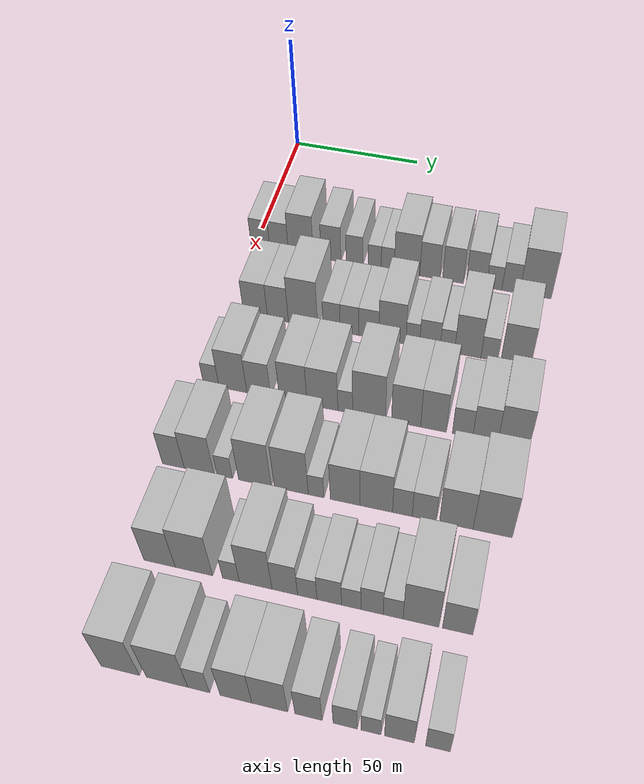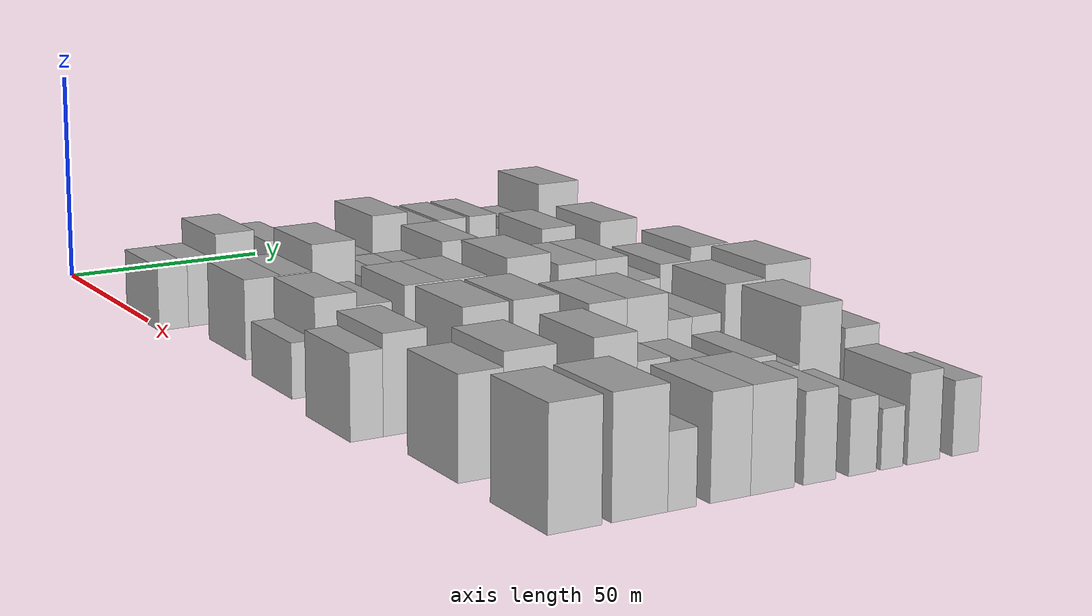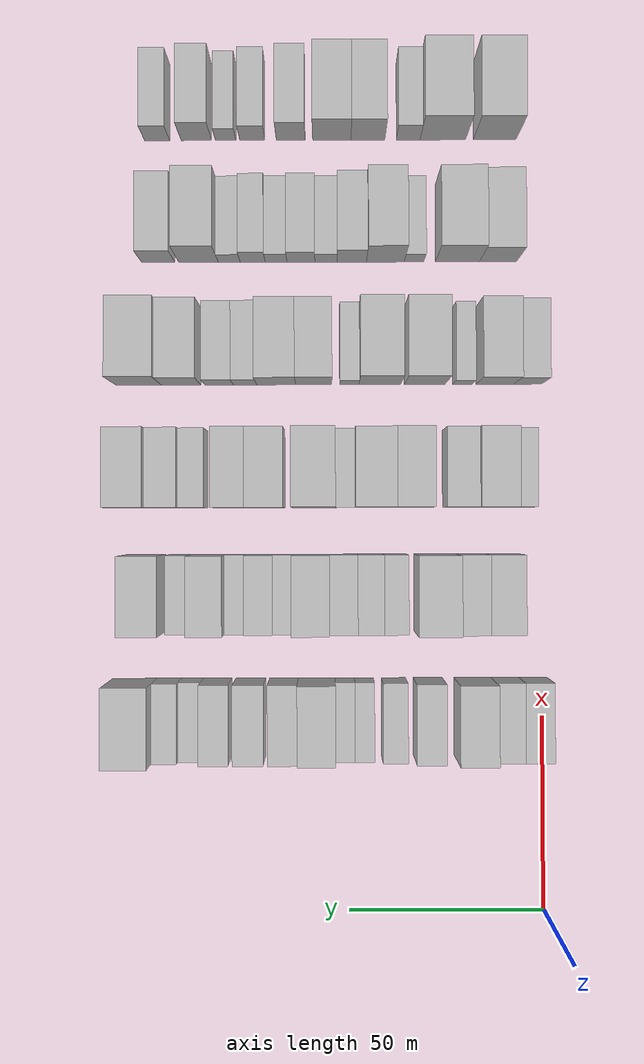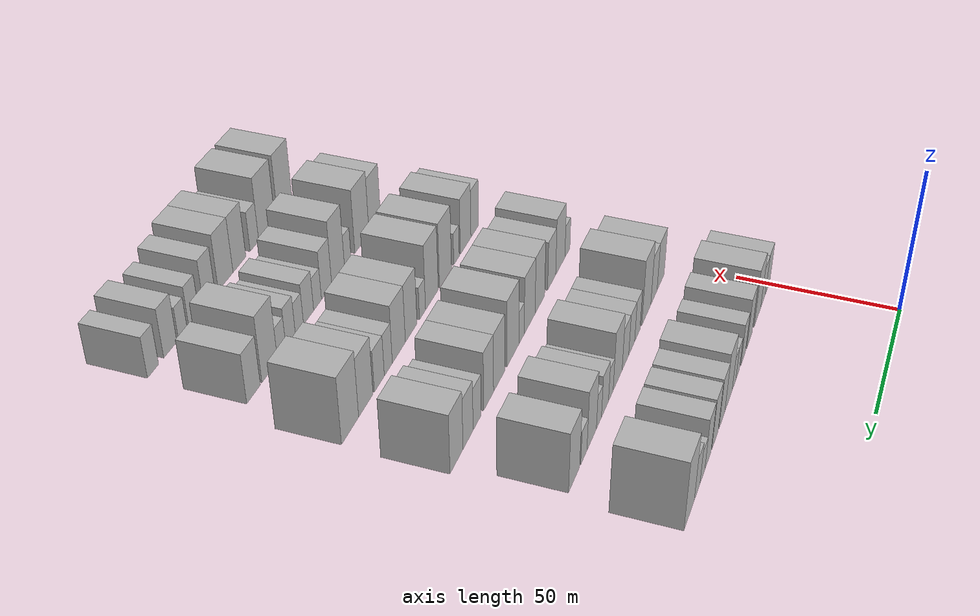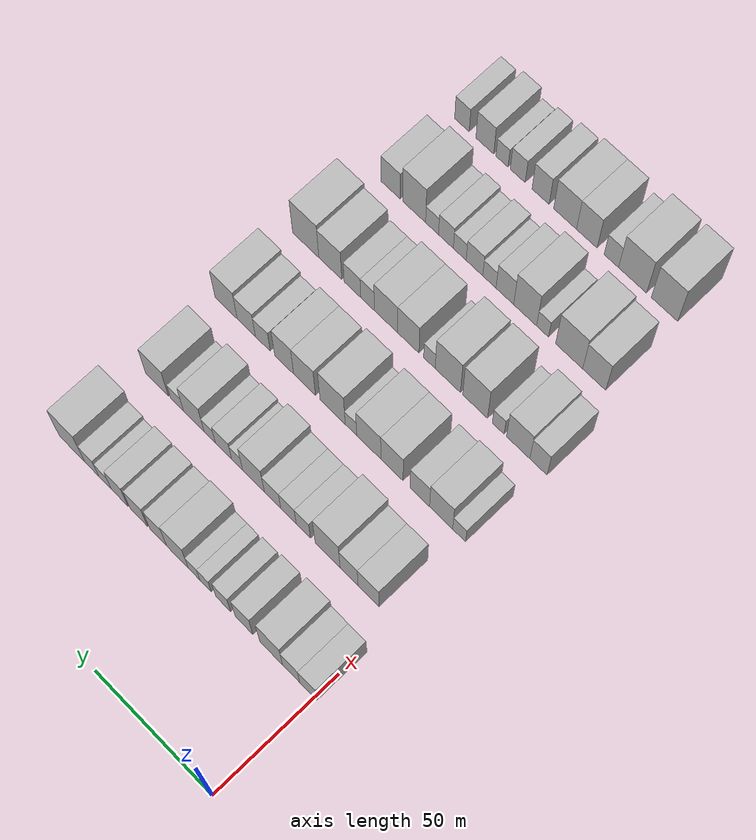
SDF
<sdf version="1.6">
 <world name="default">
  <model name="building_56">
   <static>1</static>
   <pose>50.0000 2.5139 0 0.000000 0.000000 0.000000</pose>
   <link name="link">
    <pose>0 0 7.50 0 0 0</pose>
    <collision name="collision"><geometry><box><size>20.0000 7.2975 15.0000</size></box></geometry></collision>
    <visual name="visual">
     <cast_shadows>0</cast_shadows>
     <geometry><box><size>20.0000 7.2975 15.0000</size></box></geometry>
     <material>
      <script>
       <uri>model://HANNAS_wall/materials/scripts</uri>
       <uri>model://HANNAS_wall/materials/textures</uri>
       <name>vrc/HANNAS_wall</name>
      </script>
     </material>
    </visual>
   </link>
  </model>
  <model name="building_57">
   <static>1</static>
   <pose>50.0000 9.7310 0 0.000000 0.000000 0.000000</pose>
   <link name="link">
    <pose>0 0 7.50 0 0 0</pose>
    <collision name="collision"><geometry><box><size>20.0000 7.1368 15.0000</size></box></geometry></collision>
    <visual name="visual">
     <cast_shadows>0</cast_shadows>
     <geometry><box><size>20.0000 7.1368 15.0000</size></box></geometry>
     <material>
      <script>
       <uri>model://HANNAS_wall/materials/scripts</uri>
       <uri>model://HANNAS_wall/materials/textures</uri>
       <name>vrc/HANNAS_wall</name>
      </script>
     </material>
    </visual>
   </link>
  </model>
  <model name="building_58">
   <static>1</static>
   <pose>50.0000 18.1209 0 0.000000 0.000000 0.000000</pose>
   <link name="link">
    <pose>0 0 10.50 0 0 0</pose>
    <collision name="collision"><geometry><box><size>20.0000 9.6430 21.0000</size></box></geometry></collision>
    <visual name="visual">
     <cast_shadows>0</cast_shadows>
     <geometry><box><size>20.0000 9.6430 21.0000</size></box></geometry>
     <material>
      <script>
       <uri>model://HANNAS_wall/materials/scripts</uri>
       <uri>model://HANNAS_wall/materials/textures</uri>
       <name>vrc/HANNAS_wall</name>
      </script>
     </material>
    </visual>
   </link>
  </model>
  <model name="building_59">
   <static>1</static>
   <pose>50.0000 29.6973 0 0.000000 0.000000 0.000000</pose>
   <link name="link">
    <pose>0 0 9.00 0 0 0</pose>
    <collision name="collision"><geometry><box><size>20.0000 7.5098 18.0000</size></box></geometry></collision>
    <visual name="visual">
     <cast_shadows>0</cast_shadows>
     <geometry><box><size>20.0000 7.5098 18.0000</size></box></geometry>
     <material>
      <script>
       <uri>model://HANNAS_wall/materials/scripts</uri>
       <uri>model://HANNAS_wall/materials/textures</uri>
       <name>vrc/HANNAS_wall</name>
      </script>
     </material>
    </visual>
   </link>
  </model>
  <model name="building_60">
   <static>1</static>
   <pose>50.0000 38.6070 0 0.000000 0.000000 0.000000</pose>
   <link name="link">
    <pose>0 0 7.50 0 0 0</pose>
    <collision name="collision"><geometry><box><size>20.0000 6.3096 15.0000</size></box></geometry></collision>
    <visual name="visual">
     <cast_shadows>0</cast_shadows>
     <geometry><box><size>20.0000 6.3096 15.0000</size></box></geometry>
     <material>
      <script>
       <uri>model://HANNAS_wall/materials/scripts</uri>
       <uri>model://HANNAS_wall/materials/textures</uri>
       <name>vrc/HANNAS_wall</name>
      </script>
     </material>
    </visual>
   </link>
  </model>
  <model name="building_61">
   <static>1</static>
   <pose>50.0000 46.2235 0 0.000000 0.000000 0.000000</pose>
   <link name="link">
    <pose>0 0 6.00 0 0 0</pose>
    <collision name="collision"><geometry><box><size>20.0000 4.9234 12.0000</size></box></geometry></collision>
    <visual name="visual">
     <cast_shadows>0</cast_shadows>
     <geometry><box><size>20.0000 4.9234 12.0000</size></box></geometry>
     <material>
      <script>
       <uri>model://HANNAS_wall/materials/scripts</uri>
       <uri>model://HANNAS_wall/materials/textures</uri>
       <name>vrc/HANNAS_wall</name>
      </script>
     </material>
    </visual>
   </link>
  </model>
  <model name="building_62">
   <static>1</static>
   <pose>50.0000 51.1599 0 0.000000 0.000000 0.000000</pose>
   <link name="link">
    <pose>0 0 6.00 0 0 0</pose>
    <collision name="collision"><geometry><box><size>20.0000 4.9494 12.0000</size></box></geometry></collision>
    <visual name="visual">
     <cast_shadows>0</cast_shadows>
     <geometry><box><size>20.0000 4.9494 12.0000</size></box></geometry>
     <material>
      <script>
       <uri>model://HANNAS_wall/materials/scripts</uri>
       <uri>model://HANNAS_wall/materials/textures</uri>
       <name>vrc/HANNAS_wall</name>
      </script>
     </material>
    </visual>
   </link>
  </model>
  <model name="building_63">
   <static>1</static>
   <pose>50.0000 58.3847 0 0.000000 0.000000 0.000000</pose>
   <link name="link">
    <pose>0 0 10.50 0 0 0</pose>
    <collision name="collision"><geometry><box><size>20.0000 9.5000 21.0000</size></box></geometry></collision>
    <visual name="visual">
     <cast_shadows>0</cast_shadows>
     <geometry><box><size>20.0000 9.5000 21.0000</size></box></geometry>
     <material>
      <script>
       <uri>model://HANNAS_wall/materials/scripts</uri>
       <uri>model://HANNAS_wall/materials/textures</uri>
       <name>vrc/HANNAS_wall</name>
      </script>
     </material>
    </visual>
   </link>
  </model>
  <model name="building_64">
   <static>1</static>
   <pose>50.0000 66.8344 0 0.000000 0.000000 0.000000</pose>
   <link name="link">
    <pose>0 0 9.00 0 0 0</pose>
    <collision name="collision"><geometry><box><size>20.0000 7.3995 18.0000</size></box></geometry></collision>
    <visual name="visual">
     <cast_shadows>0</cast_shadows>
     <geometry><box><size>20.0000 7.3995 18.0000</size></box></geometry>
     <material>
      <script>
       <uri>model://HANNAS_wall/materials/scripts</uri>
       <uri>model://HANNAS_wall/materials/textures</uri>
       <name>vrc/HANNAS_wall</name>
      </script>
     </material>
    </visual>
   </link>
  </model>
  <model name="building_65">
   <static>1</static>
   <pose>50.0000 75.3883 0 0.000000 0.000000 0.000000</pose>
   <link name="link">
    <pose>0 0 9.00 0 0 0</pose>
    <collision name="collision"><geometry><box><size>20.0000 7.7082 18.0000</size></box></geometry></collision>
    <visual name="visual">
     <cast_shadows>0</cast_shadows>
     <geometry><box><size>20.0000 7.7082 18.0000</size></box></geometry>
     <material>
      <script>
       <uri>model://HANNAS_wall/materials/scripts</uri>
       <uri>model://HANNAS_wall/materials/textures</uri>
       <name>vrc/HANNAS_wall</name>
      </script>
     </material>
    </visual>
   </link>
  </model>
  <model name="building_66">
   <static>1</static>
   <pose>50.0000 83.9246 0 0.000000 0.000000 0.000000</pose>
   <link name="link">
    <pose>0 0 9.00 0 0 0</pose>
    <collision name="collision"><geometry><box><size>20.0000 7.3646 18.0000</size></box></geometry></collision>
    <visual name="visual">
     <cast_shadows>0</cast_shadows>
     <geometry><box><size>20.0000 7.3646 18.0000</size></box></geometry>
     <material>
      <script>
       <uri>model://HANNAS_wall/materials/scripts</uri>
       <uri>model://HANNAS_wall/materials/textures</uri>
       <name>vrc/HANNAS_wall</name>
      </script>
     </material>
    </visual>
   </link>
  </model>
  <model name="building_67">
   <static>1</static>
   <pose>50.0000 90.4375 0 0.000000 0.000000 0.000000</pose>
   <link name="link">
    <pose>0 0 6.00 0 0 0</pose>
    <collision name="collision"><geometry><box><size>20.0000 5.6612 12.0000</size></box></geometry></collision>
    <visual name="visual">
     <cast_shadows>0</cast_shadows>
     <geometry><box><size>20.0000 5.6612 12.0000</size></box></geometry>
     <material>
      <script>
       <uri>model://HANNAS_wall/materials/scripts</uri>
       <uri>model://HANNAS_wall/materials/textures</uri>
       <name>vrc/HANNAS_wall</name>
      </script>
     </material>
    </visual>
   </link>
  </model>
  <model name="building_68">
   <static>1</static>
   <pose>50.0000 96.4729 0 0.000000 0.000000 0.000000</pose>
   <link name="link">
    <pose>0 0 7.50 0 0 0</pose>
    <collision name="collision"><geometry><box><size>20.0000 6.4095 15.0000</size></box></geometry></collision>
    <visual name="visual">
     <cast_shadows>0</cast_shadows>
     <geometry><box><size>20.0000 6.4095 15.0000</size></box></geometry>
     <material>
      <script>
       <uri>model://HANNAS_wall/materials/scripts</uri>
       <uri>model://HANNAS_wall/materials/textures</uri>
       <name>vrc/HANNAS_wall</name>
      </script>
     </material>
    </visual>
   </link>
  </model>
  <model name="building_69">
   <static>1</static>
   <pose>50.0000 105.3842 0 0.000000 0.000000 0.000000</pose>
   <link name="link">
    <pose>0 0 12.00 0 0 0</pose>
    <collision name="collision"><geometry><box><size>20.0000 11.4132 24.0000</size></box></geometry></collision>
    <visual name="visual">
     <cast_shadows>0</cast_shadows>
     <geometry><box><size>20.0000 11.4132 24.0000</size></box></geometry>
     <material>
      <script>
       <uri>model://HANNAS_wall/materials/scripts</uri>
       <uri>model://HANNAS_wall/materials/textures</uri>
       <name>vrc/HANNAS_wall</name>
      </script>
     </material>
    </visual>
   </link>
  </model>
  <model name="building_176">
   <static>1</static>
   <pose>82.0000 10.5001 0 0.000000 0.000000 0.000000</pose>
   <link name="link">
    <pose>0 0 9.00 0 0 0</pose>
    <collision name="collision"><geometry><box><size>20.0000 8.7941 18.0000</size></box></geometry></collision>
    <visual name="visual">
     <cast_shadows>0</cast_shadows>
     <geometry><box><size>20.0000 8.7941 18.0000</size></box></geometry>
     <material>
      <script>
       <uri>model://HANNAS_wall/materials/scripts</uri>
       <uri>model://HANNAS_wall/materials/textures</uri>
       <name>vrc/HANNAS_wall</name>
      </script>
     </material>
    </visual>
   </link>
  </model>
  <model name="building_177">
   <static>1</static>
   <pose>82.0000 18.7010 0 0.000000 0.000000 0.000000</pose>
   <link name="link">
    <pose>0 0 9.00 0 0 0</pose>
    <collision name="collision"><geometry><box><size>20.0000 7.6077 18.0000</size></box></geometry></collision>
    <visual name="visual">
     <cast_shadows>0</cast_shadows>
     <geometry><box><size>20.0000 7.6077 18.0000</size></box></geometry>
     <material>
      <script>
       <uri>model://HANNAS_wall/materials/scripts</uri>
       <uri>model://HANNAS_wall/materials/textures</uri>
       <name>vrc/HANNAS_wall</name>
      </script>
     </material>
    </visual>
   </link>
  </model>
  <model name="building_178">
   <static>1</static>
   <pose>82.0000 27.8248 0 0.000000 0.000000 0.000000</pose>
   <link name="link">
    <pose>0 0 12.00 0 0 0</pose>
    <collision name="collision"><geometry><box><size>20.0000 10.6400 24.0000</size></box></geometry></collision>
    <visual name="visual">
     <cast_shadows>0</cast_shadows>
     <geometry><box><size>20.0000 10.6400 24.0000</size></box></geometry>
     <material>
      <script>
       <uri>model://HANNAS_wall/materials/scripts</uri>
       <uri>model://HANNAS_wall/materials/textures</uri>
       <name>vrc/HANNAS_wall</name>
      </script>
     </material>
    </visual>
   </link>
  </model>
  <model name="building_179">
   <static>1</static>
   <pose>82.0000 38.1998 0 0.000000 0.000000 0.000000</pose>
   <link name="link">
    <pose>0 0 7.50 0 0 0</pose>
    <collision name="collision"><geometry><box><size>20.0000 6.1102 15.0000</size></box></geometry></collision>
    <visual name="visual">
     <cast_shadows>0</cast_shadows>
     <geometry><box><size>20.0000 6.1102 15.0000</size></box></geometry>
     <material>
      <script>
       <uri>model://HANNAS_wall/materials/scripts</uri>
       <uri>model://HANNAS_wall/materials/textures</uri>
       <name>vrc/HANNAS_wall</name>
      </script>
     </material>
    </visual>
   </link>
  </model>
  <model name="building_180">
   <static>1</static>
   <pose>82.0000 44.5768 0 0.000000 0.000000 0.000000</pose>
   <link name="link">
    <pose>0 0 7.50 0 0 0</pose>
    <collision name="collision"><geometry><box><size>20.0000 6.6438 15.0000</size></box></geometry></collision>
    <visual name="visual">
     <cast_shadows>0</cast_shadows>
     <geometry><box><size>20.0000 6.6438 15.0000</size></box></geometry>
     <material>
      <script>
       <uri>model://HANNAS_wall/materials/scripts</uri>
       <uri>model://HANNAS_wall/materials/textures</uri>
       <name>vrc/HANNAS_wall</name>
      </script>
     </material>
    </visual>
   </link>
  </model>
  <model name="building_181">
   <static>1</static>
   <pose>82.0000 51.4718 0 0.000000 0.000000 0.000000</pose>
   <link name="link">
    <pose>0 0 7.50 0 0 0</pose>
    <collision name="collision"><geometry><box><size>20.0000 7.1463 15.0000</size></box></geometry></collision>
    <visual name="visual">
     <cast_shadows>0</cast_shadows>
     <geometry><box><size>20.0000 7.1463 15.0000</size></box></geometry>
     <material>
      <script>
       <uri>model://HANNAS_wall/materials/scripts</uri>
       <uri>model://HANNAS_wall/materials/textures</uri>
       <name>vrc/HANNAS_wall</name>
      </script>
     </material>
    </visual>
   </link>
  </model>
  <model name="building_182">
   <static>1</static>
   <pose>82.0000 59.8040 0 0.000000 0.000000 0.000000</pose>
   <link name="link">
    <pose>0 0 10.50 0 0 0</pose>
    <collision name="collision"><geometry><box><size>20.0000 9.5181 21.0000</size></box></geometry></collision>
    <visual name="visual">
     <cast_shadows>0</cast_shadows>
     <geometry><box><size>20.0000 9.5181 21.0000</size></box></geometry>
     <material>
      <script>
       <uri>model://HANNAS_wall/materials/scripts</uri>
       <uri>model://HANNAS_wall/materials/textures</uri>
       <name>vrc/HANNAS_wall</name>
      </script>
     </material>
    </visual>
   </link>
  </model>
  <model name="building_183">
   <static>1</static>
   <pose>82.0000 66.9716 0 0.000000 0.000000 0.000000</pose>
   <link name="link">
    <pose>0 0 6.00 0 0 0</pose>
    <collision name="collision"><geometry><box><size>20.0000 4.8171 12.0000</size></box></geometry></collision>
    <visual name="visual">
     <cast_shadows>0</cast_shadows>
     <geometry><box><size>20.0000 4.8171 12.0000</size></box></geometry>
     <material>
      <script>
       <uri>model://HANNAS_wall/materials/scripts</uri>
       <uri>model://HANNAS_wall/materials/textures</uri>
       <name>vrc/HANNAS_wall</name>
      </script>
     </material>
    </visual>
   </link>
  </model>
  <model name="building_184">
   <static>1</static>
   <pose>82.0000 72.9537 0 0.000000 0.000000 0.000000</pose>
   <link name="link">
    <pose>0 0 7.50 0 0 0</pose>
    <collision name="collision"><geometry><box><size>20.0000 7.1470 15.0000</size></box></geometry></collision>
    <visual name="visual">
     <cast_shadows>0</cast_shadows>
     <geometry><box><size>20.0000 7.1470 15.0000</size></box></geometry>
     <material>
      <script>
       <uri>model://HANNAS_wall/materials/scripts</uri>
       <uri>model://HANNAS_wall/materials/textures</uri>
       <name>vrc/HANNAS_wall</name>
      </script>
     </material>
    </visual>
   </link>
  </model>
  <model name="building_185">
   <static>1</static>
   <pose>82.0000 79.0404 0 0.000000 0.000000 0.000000</pose>
   <link name="link">
    <pose>0 0 6.00 0 0 0</pose>
    <collision name="collision"><geometry><box><size>20.0000 5.0264 12.0000</size></box></geometry></collision>
    <visual name="visual">
     <cast_shadows>0</cast_shadows>
     <geometry><box><size>20.0000 5.0264 12.0000</size></box></geometry>
     <material>
      <script>
       <uri>model://HANNAS_wall/materials/scripts</uri>
       <uri>model://HANNAS_wall/materials/textures</uri>
       <name>vrc/HANNAS_wall</name>
      </script>
     </material>
    </visual>
   </link>
  </model>
  <model name="building_186">
   <static>1</static>
   <pose>82.0000 86.1222 0 0.000000 0.000000 0.000000</pose>
   <link name="link">
    <pose>0 0 10.50 0 0 0</pose>
    <collision name="collision"><geometry><box><size>20.0000 9.1372 21.0000</size></box></geometry></collision>
    <visual name="visual">
     <cast_shadows>0</cast_shadows>
     <geometry><box><size>20.0000 9.1372 21.0000</size></box></geometry>
     <material>
      <script>
       <uri>model://HANNAS_wall/materials/scripts</uri>
       <uri>model://HANNAS_wall/materials/textures</uri>
       <name>vrc/HANNAS_wall</name>
      </script>
     </material>
    </visual>
   </link>
  </model>
  <model name="building_187">
   <static>1</static>
   <pose>82.0000 93.5964 0 0.000000 0.000000 0.000000</pose>
   <link name="link">
    <pose>0 0 6.00 0 0 0</pose>
    <collision name="collision"><geometry><box><size>20.0000 5.8112 12.0000</size></box></geometry></collision>
    <visual name="visual">
     <cast_shadows>0</cast_shadows>
     <geometry><box><size>20.0000 5.8112 12.0000</size></box></geometry>
     <material>
      <script>
       <uri>model://HANNAS_wall/materials/scripts</uri>
       <uri>model://HANNAS_wall/materials/textures</uri>
       <name>vrc/HANNAS_wall</name>
      </script>
     </material>
    </visual>
   </link>
  </model>
  <model name="building_188">
   <static>1</static>
   <pose>82.0000 102.6030 0 0.000000 0.000000 0.000000</pose>
   <link name="link">
    <pose>0 0 10.50 0 0 0</pose>
    <collision name="collision"><geometry><box><size>20.0000 10.2020 21.0000</size></box></geometry></collision>
    <visual name="visual">
     <cast_shadows>0</cast_shadows>
     <geometry><box><size>20.0000 10.2020 21.0000</size></box></geometry>
     <material>
      <script>
       <uri>model://HANNAS_wall/materials/scripts</uri>
       <uri>model://HANNAS_wall/materials/textures</uri>
       <name>vrc/HANNAS_wall</name>
      </script>
     </material>
    </visual>
   </link>
  </model>
  <model name="building_298">
   <static>1</static>
   <pose>114.0000 4.9838 0 0.000000 0.000000 0.000000</pose>
   <link name="link">
    <pose>0 0 6.00 0 0 0</pose>
    <collision name="collision"><geometry><box><size>20.0000 5.4369 12.0000</size></box></geometry></collision>
    <visual name="visual">
     <cast_shadows>0</cast_shadows>
     <geometry><box><size>20.0000 5.4369 12.0000</size></box></geometry>
     <material>
      <script>
       <uri>model://HANNAS_wall/materials/scripts</uri>
       <uri>model://HANNAS_wall/materials/textures</uri>
       <name>vrc/HANNAS_wall</name>
      </script>
     </material>
    </visual>
   </link>
  </model>
  <model name="building_299">
   <static>1</static>
   <pose>114.0000 12.5447 0 0.000000 0.000000 0.000000</pose>
   <link name="link">
    <pose>0 0 10.50 0 0 0</pose>
    <collision name="collision"><geometry><box><size>20.0000 9.6849 21.0000</size></box></geometry></collision>
    <visual name="visual">
     <cast_shadows>0</cast_shadows>
     <geometry><box><size>20.0000 9.6849 21.0000</size></box></geometry>
     <material>
      <script>
       <uri>model://HANNAS_wall/materials/scripts</uri>
       <uri>model://HANNAS_wall/materials/textures</uri>
       <name>vrc/HANNAS_wall</name>
      </script>
     </material>
    </visual>
   </link>
  </model>
  <model name="building_300">
   <static>1</static>
   <pose>114.0000 21.5182 0 0.000000 0.000000 0.000000</pose>
   <link name="link">
    <pose>0 0 9.00 0 0 0</pose>
    <collision name="collision"><geometry><box><size>20.0000 8.2622 18.0000</size></box></geometry></collision>
    <visual name="visual">
     <cast_shadows>0</cast_shadows>
     <geometry><box><size>20.0000 8.2622 18.0000</size></box></geometry>
     <material>
      <script>
       <uri>model://HANNAS_wall/materials/scripts</uri>
       <uri>model://HANNAS_wall/materials/textures</uri>
       <name>vrc/HANNAS_wall</name>
      </script>
     </material>
    </visual>
   </link>
  </model>
  <model name="building_301">
   <static>1</static>
   <pose>114.0000 33.3774 0 0.000000 0.000000 0.000000</pose>
   <link name="link">
    <pose>0 0 10.50 0 0 0</pose>
    <collision name="collision"><geometry><box><size>20.0000 9.4562 21.0000</size></box></geometry></collision>
    <visual name="visual">
     <cast_shadows>0</cast_shadows>
     <geometry><box><size>20.0000 9.4562 21.0000</size></box></geometry>
     <material>
      <script>
       <uri>model://HANNAS_wall/materials/scripts</uri>
       <uri>model://HANNAS_wall/materials/textures</uri>
       <name>vrc/HANNAS_wall</name>
      </script>
     </material>
    </visual>
   </link>
  </model>
  <model name="building_302">
   <static>1</static>
   <pose>114.0000 43.3228 0 0.000000 0.000000 0.000000</pose>
   <link name="link">
    <pose>0 0 10.50 0 0 0</pose>
    <collision name="collision"><geometry><box><size>20.0000 10.4347 21.0000</size></box></geometry></collision>
    <visual name="visual">
     <cast_shadows>0</cast_shadows>
     <geometry><box><size>20.0000 10.4347 21.0000</size></box></geometry>
     <material>
      <script>
       <uri>model://HANNAS_wall/materials/scripts</uri>
       <uri>model://HANNAS_wall/materials/textures</uri>
       <name>vrc/HANNAS_wall</name>
      </script>
     </material>
    </visual>
   </link>
  </model>
  <model name="building_303">
   <static>1</static>
   <pose>114.0000 51.0262 0 0.000000 0.000000 0.000000</pose>
   <link name="link">
    <pose>0 0 6.00 0 0 0</pose>
    <collision name="collision"><geometry><box><size>20.0000 4.9720 12.0000</size></box></geometry></collision>
    <visual name="visual">
     <cast_shadows>0</cast_shadows>
     <geometry><box><size>20.0000 4.9720 12.0000</size></box></geometry>
     <material>
      <script>
       <uri>model://HANNAS_wall/materials/scripts</uri>
       <uri>model://HANNAS_wall/materials/textures</uri>
       <name>vrc/HANNAS_wall</name>
      </script>
     </material>
    </visual>
   </link>
  </model>
  <model name="building_304">
   <static>1</static>
   <pose>114.0000 58.9988 0 0.000000 0.000000 0.000000</pose>
   <link name="link">
    <pose>0 0 12.00 0 0 0</pose>
    <collision name="collision"><geometry><box><size>20.0000 10.9732 24.0000</size></box></geometry></collision>
    <visual name="visual">
     <cast_shadows>0</cast_shadows>
     <geometry><box><size>20.0000 10.9732 24.0000</size></box></geometry>
     <material>
      <script>
       <uri>model://HANNAS_wall/materials/scripts</uri>
       <uri>model://HANNAS_wall/materials/textures</uri>
       <name>vrc/HANNAS_wall</name>
      </script>
     </material>
    </visual>
   </link>
  </model>
  <model name="building_305">
   <static>1</static>
   <pose>114.0000 71.2924 0 0.000000 0.000000 0.000000</pose>
   <link name="link">
    <pose>0 0 10.50 0 0 0</pose>
    <collision name="collision"><geometry><box><size>20.0000 9.6139 21.0000</size></box></geometry></collision>
    <visual name="visual">
     <cast_shadows>0</cast_shadows>
     <geometry><box><size>20.0000 9.6139 21.0000</size></box></geometry>
     <material>
      <script>
       <uri>model://HANNAS_wall/materials/scripts</uri>
       <uri>model://HANNAS_wall/materials/textures</uri>
       <name>vrc/HANNAS_wall</name>
      </script>
     </material>
    </visual>
   </link>
  </model>
  <model name="building_306">
   <static>1</static>
   <pose>114.0000 80.3037 0 0.000000 0.000000 0.000000</pose>
   <link name="link">
    <pose>0 0 10.50 0 0 0</pose>
    <collision name="collision"><geometry><box><size>20.0000 8.4086 21.0000</size></box></geometry></collision>
    <visual name="visual">
     <cast_shadows>0</cast_shadows>
     <geometry><box><size>20.0000 8.4086 21.0000</size></box></geometry>
     <material>
      <script>
       <uri>model://HANNAS_wall/materials/scripts</uri>
       <uri>model://HANNAS_wall/materials/textures</uri>
       <name>vrc/HANNAS_wall</name>
      </script>
     </material>
    </visual>
   </link>
  </model>
  <model name="building_307">
   <static>1</static>
   <pose>114.0000 89.8148 0 0.000000 0.000000 0.000000</pose>
   <link name="link">
    <pose>0 0 7.50 0 0 0</pose>
    <collision name="collision"><geometry><box><size>20.0000 6.6136 15.0000</size></box></geometry></collision>
    <visual name="visual">
     <cast_shadows>0</cast_shadows>
     <geometry><box><size>20.0000 6.6136 15.0000</size></box></geometry>
     <material>
      <script>
       <uri>model://HANNAS_wall/materials/scripts</uri>
       <uri>model://HANNAS_wall/materials/textures</uri>
       <name>vrc/HANNAS_wall</name>
      </script>
     </material>
    </visual>
   </link>
  </model>
  <model name="building_308">
   <static>1</static>
   <pose>114.0000 97.1753 0 0.000000 0.000000 0.000000</pose>
   <link name="link">
    <pose>0 0 9.00 0 0 0</pose>
    <collision name="collision"><geometry><box><size>20.0000 8.1074 18.0000</size></box></geometry></collision>
    <visual name="visual">
     <cast_shadows>0</cast_shadows>
     <geometry><box><size>20.0000 8.1074 18.0000</size></box></geometry>
     <material>
      <script>
       <uri>model://HANNAS_wall/materials/scripts</uri>
       <uri>model://HANNAS_wall/materials/textures</uri>
       <name>vrc/HANNAS_wall</name>
      </script>
     </material>
    </visual>
   </link>
  </model>
  <model name="building_309">
   <static>1</static>
   <pose>114.0000 106.2518 0 0.000000 0.000000 0.000000</pose>
   <link name="link">
    <pose>0 0 10.50 0 0 0</pose>
    <collision name="collision"><geometry><box><size>20.0000 10.0455 21.0000</size></box></geometry></collision>
    <visual name="visual">
     <cast_shadows>0</cast_shadows>
     <geometry><box><size>20.0000 10.0455 21.0000</size></box></geometry>
     <material>
      <script>
       <uri>model://HANNAS_wall/materials/scripts</uri>
       <uri>model://HANNAS_wall/materials/textures</uri>
       <name>vrc/HANNAS_wall</name>
      </script>
     </material>
    </visual>
   </link>
  </model>
  <model name="building_416">
   <static>1</static>
   <pose>146.0000 3.3747 0 0.000000 0.000000 0.000000</pose>
   <link name="link">
    <pose>0 0 9.00 0 0 0</pose>
    <collision name="collision"><geometry><box><size>20.0000 7.2442 18.0000</size></box></geometry></collision>
    <visual name="visual">
     <cast_shadows>0</cast_shadows>
     <geometry><box><size>20.0000 7.2442 18.0000</size></box></geometry>
     <material>
      <script>
       <uri>model://HANNAS_wall/materials/scripts</uri>
       <uri>model://HANNAS_wall/materials/textures</uri>
       <name>vrc/HANNAS_wall</name>
      </script>
     </material>
    </visual>
   </link>
  </model>
  <model name="building_417">
   <static>1</static>
   <pose>146.0000 11.9037 0 0.000000 0.000000 0.000000</pose>
   <link name="link">
    <pose>0 0 10.50 0 0 0</pose>
    <collision name="collision"><geometry><box><size>20.0000 9.8138 21.0000</size></box></geometry></collision>
    <visual name="visual">
     <cast_shadows>0</cast_shadows>
     <geometry><box><size>20.0000 9.8138 21.0000</size></box></geometry>
     <material>
      <script>
       <uri>model://HANNAS_wall/materials/scripts</uri>
       <uri>model://HANNAS_wall/materials/textures</uri>
       <name>vrc/HANNAS_wall</name>
      </script>
     </material>
    </visual>
   </link>
  </model>
  <model name="building_418">
   <static>1</static>
   <pose>146.0000 20.3219 0 0.000000 0.000000 0.000000</pose>
   <link name="link">
    <pose>0 0 6.00 0 0 0</pose>
    <collision name="collision"><geometry><box><size>20.0000 5.0226 12.0000</size></box></geometry></collision>
    <visual name="visual">
     <cast_shadows>0</cast_shadows>
     <geometry><box><size>20.0000 5.0226 12.0000</size></box></geometry>
     <material>
      <script>
       <uri>model://HANNAS_wall/materials/scripts</uri>
       <uri>model://HANNAS_wall/materials/textures</uri>
       <name>vrc/HANNAS_wall</name>
      </script>
     </material>
    </visual>
   </link>
  </model>
  <model name="building_419">
   <static>1</static>
   <pose>146.0000 30.1218 0 0.000000 0.000000 0.000000</pose>
   <link name="link">
    <pose>0 0 12.00 0 0 0</pose>
    <collision name="collision"><geometry><box><size>20.0000 10.5771 24.0000</size></box></geometry></collision>
    <visual name="visual">
     <cast_shadows>0</cast_shadows>
     <geometry><box><size>20.0000 10.5771 24.0000</size></box></geometry>
     <material>
      <script>
       <uri>model://HANNAS_wall/materials/scripts</uri>
       <uri>model://HANNAS_wall/materials/textures</uri>
       <name>vrc/HANNAS_wall</name>
      </script>
     </material>
    </visual>
   </link>
  </model>
  <model name="building_420">
   <static>1</static>
   <pose>146.0000 41.8360 0 0.000000 0.000000 0.000000</pose>
   <link name="link">
    <pose>0 0 12.00 0 0 0</pose>
    <collision name="collision"><geometry><box><size>20.0000 10.8514 24.0000</size></box></geometry></collision>
    <visual name="visual">
     <cast_shadows>0</cast_shadows>
     <geometry><box><size>20.0000 10.8514 24.0000</size></box></geometry>
     <material>
      <script>
       <uri>model://HANNAS_wall/materials/scripts</uri>
       <uri>model://HANNAS_wall/materials/textures</uri>
       <name>vrc/HANNAS_wall</name>
      </script>
     </material>
    </visual>
   </link>
  </model>
  <model name="building_421">
   <static>1</static>
   <pose>146.0000 49.7652 0 0.000000 0.000000 0.000000</pose>
   <link name="link">
    <pose>0 0 6.00 0 0 0</pose>
    <collision name="collision"><geometry><box><size>20.0000 5.0070 12.0000</size></box></geometry></collision>
    <visual name="visual">
     <cast_shadows>0</cast_shadows>
     <geometry><box><size>20.0000 5.0070 12.0000</size></box></geometry>
     <material>
      <script>
       <uri>model://HANNAS_wall/materials/scripts</uri>
       <uri>model://HANNAS_wall/materials/textures</uri>
       <name>vrc/HANNAS_wall</name>
      </script>
     </material>
    </visual>
   </link>
  </model>
  <model name="building_422">
   <static>1</static>
   <pose>146.0000 58.9405 0 0.000000 0.000000 0.000000</pose>
   <link name="link">
    <pose>0 0 10.50 0 0 0</pose>
    <collision name="collision"><geometry><box><size>20.0000 9.3436 21.0000</size></box></geometry></collision>
    <visual name="visual">
     <cast_shadows>0</cast_shadows>
     <geometry><box><size>20.0000 9.3436 21.0000</size></box></geometry>
     <material>
      <script>
       <uri>model://HANNAS_wall/materials/scripts</uri>
       <uri>model://HANNAS_wall/materials/textures</uri>
       <name>vrc/HANNAS_wall</name>
      </script>
     </material>
    </visual>
   </link>
  </model>
  <model name="building_423">
   <static>1</static>
   <pose>146.0000 68.6946 0 0.000000 0.000000 0.000000</pose>
   <link name="link">
    <pose>0 0 10.50 0 0 0</pose>
    <collision name="collision"><geometry><box><size>20.0000 10.1646 21.0000</size></box></geometry></collision>
    <visual name="visual">
     <cast_shadows>0</cast_shadows>
     <geometry><box><size>20.0000 10.1646 21.0000</size></box></geometry>
     <material>
      <script>
       <uri>model://HANNAS_wall/materials/scripts</uri>
       <uri>model://HANNAS_wall/materials/textures</uri>
       <name>vrc/HANNAS_wall</name>
      </script>
     </material>
    </visual>
   </link>
  </model>
  <model name="building_424">
   <static>1</static>
   <pose>146.0000 76.8011 0 0.000000 0.000000 0.000000</pose>
   <link name="link">
    <pose>0 0 7.50 0 0 0</pose>
    <collision name="collision"><geometry><box><size>20.0000 6.0484 15.0000</size></box></geometry></collision>
    <visual name="visual">
     <cast_shadows>0</cast_shadows>
     <geometry><box><size>20.0000 6.0484 15.0000</size></box></geometry>
     <material>
      <script>
       <uri>model://HANNAS_wall/materials/scripts</uri>
       <uri>model://HANNAS_wall/materials/textures</uri>
       <name>vrc/HANNAS_wall</name>
      </script>
     </material>
    </visual>
   </link>
  </model>
  <model name="building_425">
   <static>1</static>
   <pose>146.0000 83.5170 0 0.000000 0.000000 0.000000</pose>
   <link name="link">
    <pose>0 0 7.50 0 0 0</pose>
    <collision name="collision"><geometry><box><size>20.0000 7.3833 15.0000</size></box></geometry></collision>
    <visual name="visual">
     <cast_shadows>0</cast_shadows>
     <geometry><box><size>20.0000 7.3833 15.0000</size></box></geometry>
     <material>
      <script>
       <uri>model://HANNAS_wall/materials/scripts</uri>
       <uri>model://HANNAS_wall/materials/textures</uri>
       <name>vrc/HANNAS_wall</name>
      </script>
     </material>
    </visual>
   </link>
  </model>
  <model name="building_426">
   <static>1</static>
   <pose>146.0000 93.3435 0 0.000000 0.000000 0.000000</pose>
   <link name="link">
    <pose>0 0 10.50 0 0 0</pose>
    <collision name="collision"><geometry><box><size>20.0000 10.2696 21.0000</size></box></geometry></collision>
    <visual name="visual">
     <cast_shadows>0</cast_shadows>
     <geometry><box><size>20.0000 10.2696 21.0000</size></box></geometry>
     <material>
      <script>
       <uri>model://HANNAS_wall/materials/scripts</uri>
       <uri>model://HANNAS_wall/materials/textures</uri>
       <name>vrc/HANNAS_wall</name>
      </script>
     </material>
    </visual>
   </link>
  </model>
  <model name="building_427">
   <static>1</static>
   <pose>146.0000 104.3911 0 0.000000 0.000000 0.000000</pose>
   <link name="link">
    <pose>0 0 12.00 0 0 0</pose>
    <collision name="collision"><geometry><box><size>20.0000 11.8257 24.0000</size></box></geometry></collision>
    <visual name="visual">
     <cast_shadows>0</cast_shadows>
     <geometry><box><size>20.0000 11.8257 24.0000</size></box></geometry>
     <material>
      <script>
       <uri>model://HANNAS_wall/materials/scripts</uri>
       <uri>model://HANNAS_wall/materials/textures</uri>
       <name>vrc/HANNAS_wall</name>
      </script>
     </material>
    </visual>
   </link>
  </model>
  <model name="building_538">
   <static>1</static>
   <pose>178.0000 10.8981 0 0.000000 0.000000 0.000000</pose>
   <link name="link">
    <pose>0 0 10.50 0 0 0</pose>
    <collision name="collision"><geometry><box><size>20.0000 9.6988 21.0000</size></box></geometry></collision>
    <visual name="visual">
     <cast_shadows>0</cast_shadows>
     <geometry><box><size>20.0000 9.6988 21.0000</size></box></geometry>
     <material>
      <script>
       <uri>model://HANNAS_wall/materials/scripts</uri>
       <uri>model://HANNAS_wall/materials/textures</uri>
       <name>vrc/HANNAS_wall</name>
      </script>
     </material>
    </visual>
   </link>
  </model>
  <model name="building_539">
   <static>1</static>
   <pose>178.0000 21.4979 0 0.000000 0.000000 0.000000</pose>
   <link name="link">
    <pose>0 0 12.00 0 0 0</pose>
    <collision name="collision"><geometry><box><size>20.0000 11.5007 24.0000</size></box></geometry></collision>
    <visual name="visual">
     <cast_shadows>0</cast_shadows>
     <geometry><box><size>20.0000 11.5007 24.0000</size></box></geometry>
     <material>
      <script>
       <uri>model://HANNAS_wall/materials/scripts</uri>
       <uri>model://HANNAS_wall/materials/textures</uri>
       <name>vrc/HANNAS_wall</name>
      </script>
     </material>
    </visual>
   </link>
  </model>
  <model name="building_540">
   <static>1</static>
   <pose>178.0000 32.8094 0 0.000000 0.000000 0.000000</pose>
   <link name="link">
    <pose>0 0 6.00 0 0 0</pose>
    <collision name="collision"><geometry><box><size>20.0000 5.1224 12.0000</size></box></geometry></collision>
    <visual name="visual">
     <cast_shadows>0</cast_shadows>
     <geometry><box><size>20.0000 5.1224 12.0000</size></box></geometry>
     <material>
      <script>
       <uri>model://HANNAS_wall/materials/scripts</uri>
       <uri>model://HANNAS_wall/materials/textures</uri>
       <name>vrc/HANNAS_wall</name>
      </script>
     </material>
    </visual>
   </link>
  </model>
  <model name="building_541">
   <static>1</static>
   <pose>178.0000 40.2866 0 0.000000 0.000000 0.000000</pose>
   <link name="link">
    <pose>0 0 12.00 0 0 0</pose>
    <collision name="collision"><geometry><box><size>20.0000 9.8319 24.0000</size></box></geometry></collision>
    <visual name="visual">
     <cast_shadows>0</cast_shadows>
     <geometry><box><size>20.0000 9.8319 24.0000</size></box></geometry>
     <material>
      <script>
       <uri>model://HANNAS_wall/materials/scripts</uri>
       <uri>model://HANNAS_wall/materials/textures</uri>
       <name>vrc/HANNAS_wall</name>
      </script>
     </material>
    </visual>
   </link>
  </model>
  <model name="building_542">
   <static>1</static>
   <pose>178.0000 49.0335 0 0.000000 0.000000 0.000000</pose>
   <link name="link">
    <pose>0 0 9.00 0 0 0</pose>
    <collision name="collision"><geometry><box><size>20.0000 7.6618 18.0000</size></box></geometry></collision>
    <visual name="visual">
     <cast_shadows>0</cast_shadows>
     <geometry><box><size>20.0000 7.6618 18.0000</size></box></geometry>
     <material>
      <script>
       <uri>model://HANNAS_wall/materials/scripts</uri>
       <uri>model://HANNAS_wall/materials/textures</uri>
       <name>vrc/HANNAS_wall</name>
      </script>
     </material>
    </visual>
   </link>
  </model>
  <model name="building_543">
   <static>1</static>
   <pose>178.0000 55.7324 0 0.000000 0.000000 0.000000</pose>
   <link name="link">
    <pose>0 0 6.00 0 0 0</pose>
    <collision name="collision"><geometry><box><size>20.0000 5.7361 12.0000</size></box></geometry></collision>
    <visual name="visual">
     <cast_shadows>0</cast_shadows>
     <geometry><box><size>20.0000 5.7361 12.0000</size></box></geometry>
     <material>
      <script>
       <uri>model://HANNAS_wall/materials/scripts</uri>
       <uri>model://HANNAS_wall/materials/textures</uri>
       <name>vrc/HANNAS_wall</name>
      </script>
     </material>
    </visual>
   </link>
  </model>
  <model name="building_544">
   <static>1</static>
   <pose>178.0000 62.2259 0 0.000000 0.000000 0.000000</pose>
   <link name="link">
    <pose>0 0 7.50 0 0 0</pose>
    <collision name="collision"><geometry><box><size>20.0000 7.2509 15.0000</size></box></geometry></collision>
    <visual name="visual">
     <cast_shadows>0</cast_shadows>
     <geometry><box><size>20.0000 7.2509 15.0000</size></box></geometry>
     <material>
      <script>
       <uri>model://HANNAS_wall/materials/scripts</uri>
       <uri>model://HANNAS_wall/materials/textures</uri>
       <name>vrc/HANNAS_wall</name>
      </script>
     </material>
    </visual>
   </link>
  </model>
  <model name="building_545">
   <static>1</static>
   <pose>178.0000 68.6634 0 0.000000 0.000000 0.000000</pose>
   <link name="link">
    <pose>0 0 6.00 0 0 0</pose>
    <collision name="collision"><geometry><box><size>20.0000 5.6240 12.0000</size></box></geometry></collision>
    <visual name="visual">
     <cast_shadows>0</cast_shadows>
     <geometry><box><size>20.0000 5.6240 12.0000</size></box></geometry>
     <material>
      <script>
       <uri>model://HANNAS_wall/materials/scripts</uri>
       <uri>model://HANNAS_wall/materials/textures</uri>
       <name>vrc/HANNAS_wall</name>
      </script>
     </material>
    </visual>
   </link>
  </model>
  <model name="building_546">
   <static>1</static>
   <pose>178.0000 74.7346 0 0.000000 0.000000 0.000000</pose>
   <link name="link">
    <pose>0 0 7.50 0 0 0</pose>
    <collision name="collision"><geometry><box><size>20.0000 6.5184 15.0000</size></box></geometry></collision>
    <visual name="visual">
     <cast_shadows>0</cast_shadows>
     <geometry><box><size>20.0000 6.5184 15.0000</size></box></geometry>
     <material>
      <script>
       <uri>model://HANNAS_wall/materials/scripts</uri>
       <uri>model://HANNAS_wall/materials/textures</uri>
       <name>vrc/HANNAS_wall</name>
      </script>
     </material>
    </visual>
   </link>
  </model>
  <model name="building_547">
   <static>1</static>
   <pose>178.0000 80.8640 0 0.000000 0.000000 0.000000</pose>
   <link name="link">
    <pose>0 0 6.00 0 0 0</pose>
    <collision name="collision"><geometry><box><size>20.0000 5.7405 12.0000</size></box></geometry></collision>
    <visual name="visual">
     <cast_shadows>0</cast_shadows>
     <geometry><box><size>20.0000 5.7405 12.0000</size></box></geometry>
     <material>
      <script>
       <uri>model://HANNAS_wall/materials/scripts</uri>
       <uri>model://HANNAS_wall/materials/textures</uri>
       <name>vrc/HANNAS_wall</name>
      </script>
     </material>
    </visual>
   </link>
  </model>
  <model name="building_548">
   <static>1</static>
   <pose>178.0000 88.8717 0 0.000000 0.000000 0.000000</pose>
   <link name="link">
    <pose>0 0 12.00 0 0 0</pose>
    <collision name="collision"><geometry><box><size>20.0000 10.2751 24.0000</size></box></geometry></collision>
    <visual name="visual">
     <cast_shadows>0</cast_shadows>
     <geometry><box><size>20.0000 10.2751 24.0000</size></box></geometry>
     <material>
      <script>
       <uri>model://HANNAS_wall/materials/scripts</uri>
       <uri>model://HANNAS_wall/materials/textures</uri>
       <name>vrc/HANNAS_wall</name>
      </script>
     </material>
    </visual>
   </link>
  </model>
  <model name="building_549">
   <static>1</static>
   <pose>178.0000 99.3260 0 0.000000 0.000000 0.000000</pose>
   <link name="link">
    <pose>0 0 9.00 0 0 0</pose>
    <collision name="collision"><geometry><box><size>20.0000 8.6334 18.0000</size></box></geometry></collision>
    <visual name="visual">
     <cast_shadows>0</cast_shadows>
     <geometry><box><size>20.0000 8.6334 18.0000</size></box></geometry>
     <material>
      <script>
       <uri>model://HANNAS_wall/materials/scripts</uri>
       <uri>model://HANNAS_wall/materials/textures</uri>
       <name>vrc/HANNAS_wall</name>
      </script>
     </material>
    </visual>
   </link>
  </model>
  <model name="building_665">
   <static>1</static>
   <pose>210.0000 11.6112 0 0.000000 0.000000 0.000000</pose>
   <link name="link">
    <pose>0 0 12.00 0 0 0</pose>
    <collision name="collision"><geometry><box><size>20.0000 11.1402 24.0000</size></box></geometry></collision>
    <visual name="visual">
     <cast_shadows>0</cast_shadows>
     <geometry><box><size>20.0000 11.1402 24.0000</size></box></geometry>
     <material>
      <script>
       <uri>model://HANNAS_wall/materials/scripts</uri>
       <uri>model://HANNAS_wall/materials/textures</uri>
       <name>vrc/HANNAS_wall</name>
      </script>
     </material>
    </visual>
   </link>
  </model>
  <model name="building_666">
   <static>1</static>
   <pose>210.0000 25.1412 0 0.000000 0.000000 0.000000</pose>
   <link name="link">
    <pose>0 0 12.00 0 0 0</pose>
    <collision name="collision"><geometry><box><size>20.0000 11.9197 24.0000</size></box></geometry></collision>
    <visual name="visual">
     <cast_shadows>0</cast_shadows>
     <geometry><box><size>20.0000 11.9197 24.0000</size></box></geometry>
     <material>
      <script>
       <uri>model://HANNAS_wall/materials/scripts</uri>
       <uri>model://HANNAS_wall/materials/textures</uri>
       <name>vrc/HANNAS_wall</name>
      </script>
     </material>
    </visual>
   </link>
  </model>
  <model name="building_667">
   <static>1</static>
   <pose>210.0000 34.1856 0 0.000000 0.000000 0.000000</pose>
   <link name="link">
    <pose>0 0 7.50 0 0 0</pose>
    <collision name="collision"><geometry><box><size>20.0000 6.1691 15.0000</size></box></geometry></collision>
    <visual name="visual">
     <cast_shadows>0</cast_shadows>
     <geometry><box><size>20.0000 6.1691 15.0000</size></box></geometry>
     <material>
      <script>
       <uri>model://HANNAS_wall/materials/scripts</uri>
       <uri>model://HANNAS_wall/materials/textures</uri>
       <name>vrc/HANNAS_wall</name>
      </script>
     </material>
    </visual>
   </link>
  </model>
  <model name="building_668">
   <static>1</static>
   <pose>210.0000 44.7263 0 0.000000 0.000000 0.000000</pose>
   <link name="link">
    <pose>0 0 10.50 0 0 0</pose>
    <collision name="collision"><geometry><box><size>20.0000 8.9122 21.0000</size></box></geometry></collision>
    <visual name="visual">
     <cast_shadows>0</cast_shadows>
     <geometry><box><size>20.0000 8.9122 21.0000</size></box></geometry>
     <material>
      <script>
       <uri>model://HANNAS_wall/materials/scripts</uri>
       <uri>model://HANNAS_wall/materials/textures</uri>
       <name>vrc/HANNAS_wall</name>
      </script>
     </material>
    </visual>
   </link>
  </model>
  <model name="building_669">
   <static>1</static>
   <pose>210.0000 54.1397 0 0.000000 0.000000 0.000000</pose>
   <link name="link">
    <pose>0 0 10.50 0 0 0</pose>
    <collision name="collision"><geometry><box><size>20.0000 9.9146 21.0000</size></box></geometry></collision>
    <visual name="visual">
     <cast_shadows>0</cast_shadows>
     <geometry><box><size>20.0000 9.9146 21.0000</size></box></geometry>
     <material>
      <script>
       <uri>model://HANNAS_wall/materials/scripts</uri>
       <uri>model://HANNAS_wall/materials/textures</uri>
       <name>vrc/HANNAS_wall</name>
      </script>
     </material>
    </visual>
   </link>
  </model>
  <model name="building_670">
   <static>1</static>
   <pose>210.0000 64.8315 0 0.000000 0.000000 0.000000</pose>
   <link name="link">
    <pose>0 0 9.00 0 0 0</pose>
    <collision name="collision"><geometry><box><size>20.0000 7.4689 18.0000</size></box></geometry></collision>
    <visual name="visual">
     <cast_shadows>0</cast_shadows>
     <geometry><box><size>20.0000 7.4689 18.0000</size></box></geometry>
     <material>
      <script>
       <uri>model://HANNAS_wall/materials/scripts</uri>
       <uri>model://HANNAS_wall/materials/textures</uri>
       <name>vrc/HANNAS_wall</name>
      </script>
     </material>
    </visual>
   </link>
  </model>
  <model name="building_671">
   <static>1</static>
   <pose>210.0000 74.8431 0 0.000000 0.000000 0.000000</pose>
   <link name="link">
    <pose>0 0 7.50 0 0 0</pose>
    <collision name="collision"><geometry><box><size>20.0000 6.5543 15.0000</size></box></geometry></collision>
    <visual name="visual">
     <cast_shadows>0</cast_shadows>
     <geometry><box><size>20.0000 6.5543 15.0000</size></box></geometry>
     <material>
      <script>
       <uri>model://HANNAS_wall/materials/scripts</uri>
       <uri>model://HANNAS_wall/materials/textures</uri>
       <name>vrc/HANNAS_wall</name>
      </script>
     </material>
    </visual>
   </link>
  </model>
  <model name="building_672">
   <static>1</static>
   <pose>210.0000 81.8003 0 0.000000 0.000000 0.000000</pose>
   <link name="link">
    <pose>0 0 6.00 0 0 0</pose>
    <collision name="collision"><geometry><box><size>20.0000 5.3601 12.0000</size></box></geometry></collision>
    <visual name="visual">
     <cast_shadows>0</cast_shadows>
     <geometry><box><size>20.0000 5.3601 12.0000</size></box></geometry>
     <material>
      <script>
       <uri>model://HANNAS_wall/materials/scripts</uri>
       <uri>model://HANNAS_wall/materials/textures</uri>
       <name>vrc/HANNAS_wall</name>
      </script>
     </material>
    </visual>
   </link>
  </model>
  <model name="building_673">
   <static>1</static>
   <pose>210.0000 89.4406 0 0.000000 0.000000 0.000000</pose>
   <link name="link">
    <pose>0 0 9.00 0 0 0</pose>
    <collision name="collision"><geometry><box><size>20.0000 7.9206 18.0000</size></box></geometry></collision>
    <visual name="visual">
     <cast_shadows>0</cast_shadows>
     <geometry><box><size>20.0000 7.9206 18.0000</size></box></geometry>
     <material>
      <script>
       <uri>model://HANNAS_wall/materials/scripts</uri>
       <uri>model://HANNAS_wall/materials/textures</uri>
       <name>vrc/HANNAS_wall</name>
      </script>
     </material>
    </visual>
   </link>
  </model>
  <model name="building_674">
   <static>1</static>
   <pose>210.0000 99.6660 0 0.000000 0.000000 0.000000</pose>
   <link name="link">
    <pose>0 0 7.50 0 0 0</pose>
    <collision name="collision"><geometry><box><size>20.0000 6.5301 15.0000</size></box></geometry></collision>
    <visual name="visual">
     <cast_shadows>0</cast_shadows>
     <geometry><box><size>20.0000 6.5301 15.0000</size></box></geometry>
     <material>
      <script>
       <uri>model://HANNAS_wall/materials/scripts</uri>
       <uri>model://HANNAS_wall/materials/textures</uri>
       <name>vrc/HANNAS_wall</name>
      </script>
     </material>
    </visual>
   </link>
  </model>
 </world>
</sdf>
